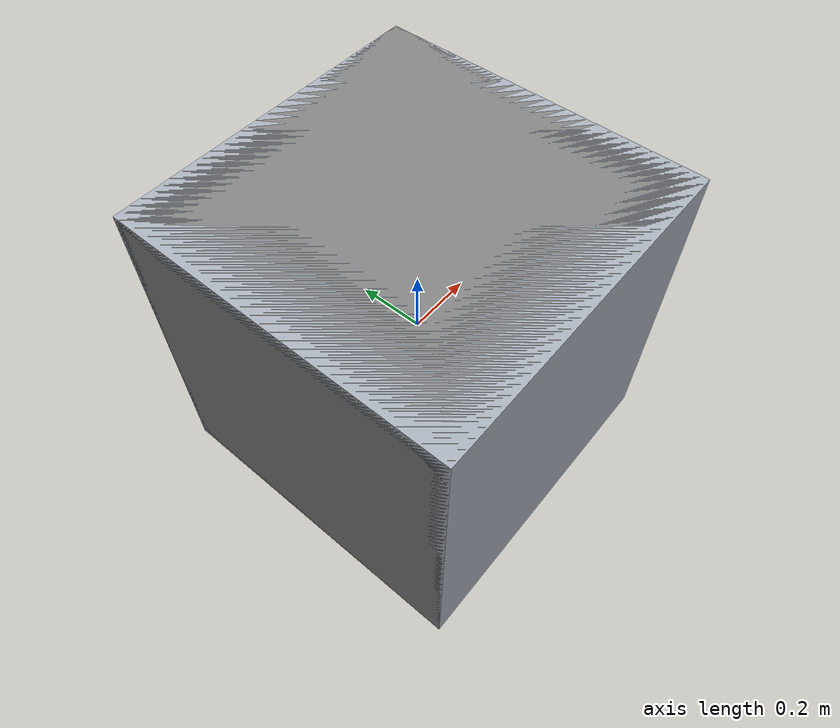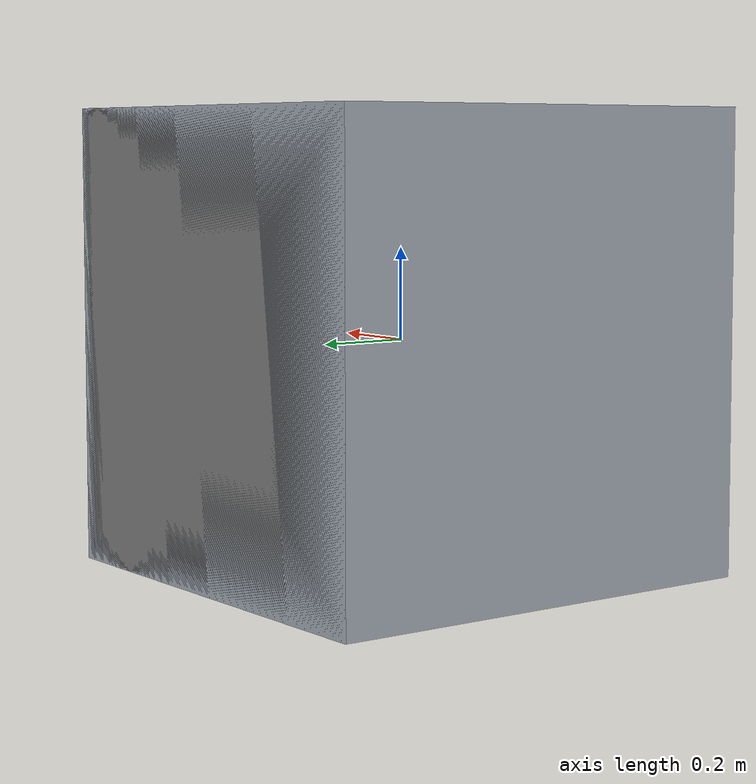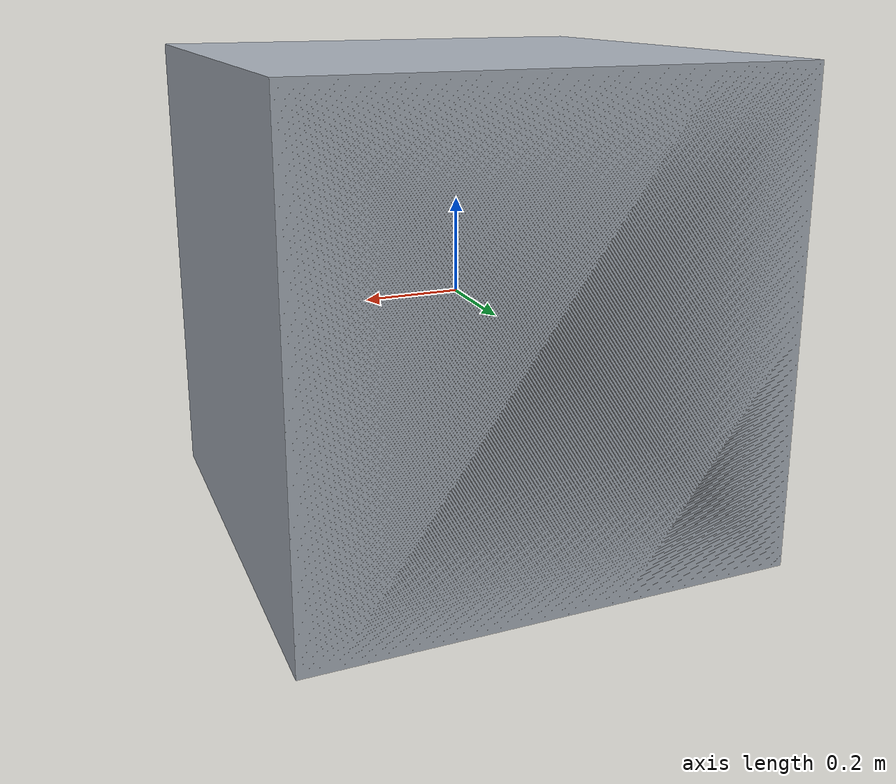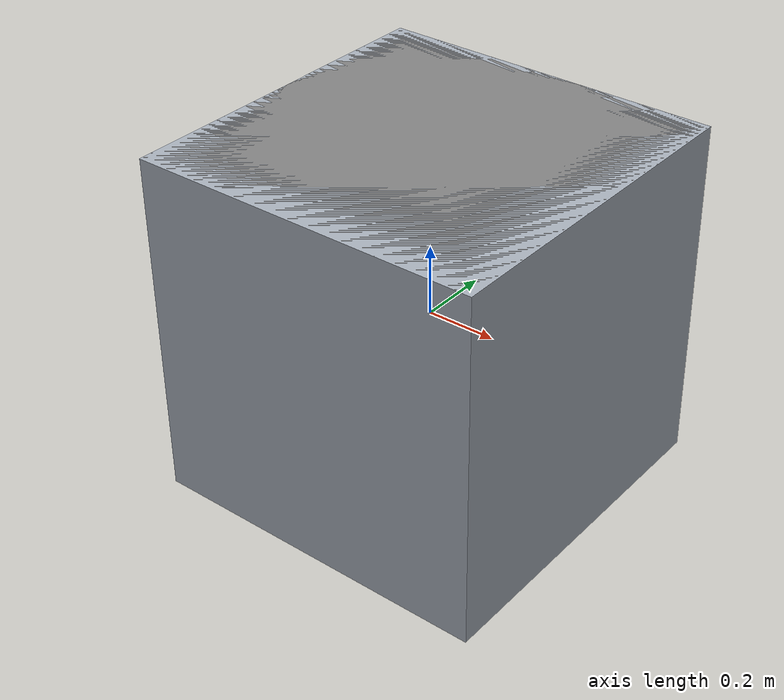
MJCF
<mujoco model="asset">
  <asset>
    <mesh name="dex_cube_discovered_visual" file="dex_cube_discovered.normalized.obj"/>
    <mesh name="dex_cube_discovered_collision" file="dex_cube_discovered.collision_box.obj"/>
  </asset>
  <worldbody><body name="dex_cube_discovered">
    <geom type="mesh" mesh="dex_cube_discovered_visual" contype="0" conaffinity="0" rgba="0.65 0.68 0.72 1"/>
    <geom type="mesh" mesh="dex_cube_discovered_collision" density="1000"/>
  </body></worldbody>
</mujoco>
